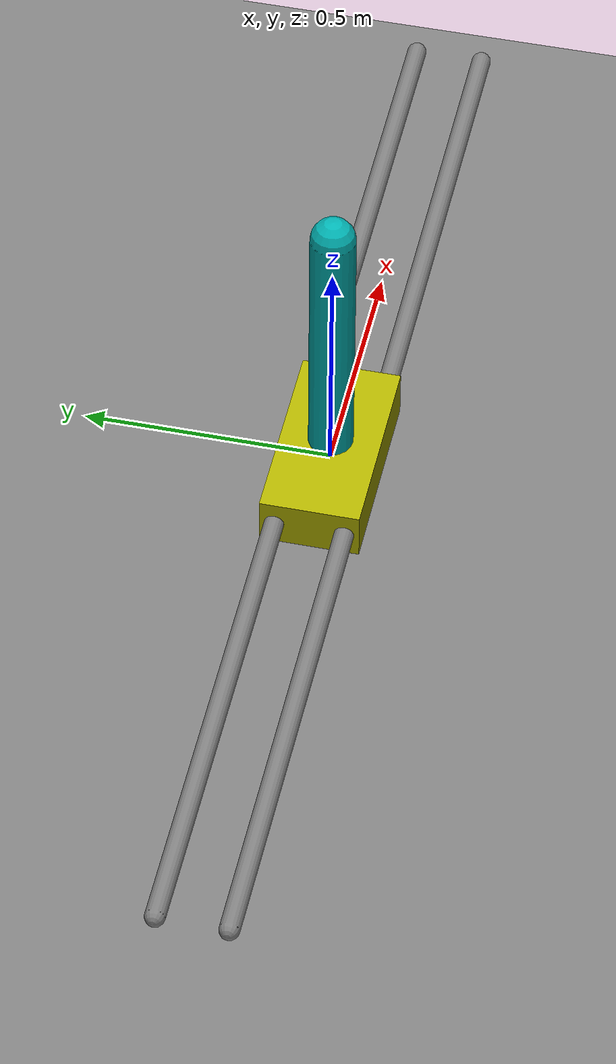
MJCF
<mujoco model='test_cartpole'>
  <compiler inertiafromgeom='true' coordinate='local'/>

  <custom>
    <!-- 设定一个控制步长为0.04s -->
    <numeric name="control_timestep" data="0.04" />
  </custom>
  <!-- 设定底层物理引擎的仿真步长为0.01s -->
  <option timestep='0.01'/>

  <default>
    <!-- 增加关节阻尼为0.05 -->
    <joint damping='0.05' solreflimit='.08 1'/>
    <!-- 定义了各种摩擦系数 -->
    <geom contype='0' friction='1 0.1 0.1'/>
  </default>

  <worldbody>
    <camera name='fixed' pos='0 -2.5 0' quat='0.707 0.707 0 0'/>
    <geom name='floor' pos='0 0 -1' size='4 4 4' type='plane' />
    <geom name='rail1' type='capsule' pos='0 .07 0' quat='0.707 0 0.707 0'
          size='0.02 1.2' />
    <geom name='rail2' type='capsule' pos='0 -.07 0' quat='0.707 0 0.707 0'
          size='0.02 1.2' />
    <!-- 小车物体定义 -->
    <body name='cart' pos='0 0 0'>
      <camera pos='0 -2.5 0' quat='0.707 0.707 0 0' />
      <!-- 下面的range限制了小车的移动范围在-1到1之间 -->
      <joint name='slider' type='slide' limited='true' pos='0 0 0'
               axis='1 0 0' range='-1 1' />
      <geom name='cart' type='box' pos='0 0 0'
              size='0.2 0.1 0.05' rgba='0.7 0.7 0 1' />
      <site name='cart sensor' type='box' pos='0 0 0'
              size='0.2 0.1 0.05' rgba='0.7 0.7 0 0' />
      <!-- 倒立摆物体定义 -->
      <body name='pole' pos='0 0 0'>
        <camera name='pole'  pos='0 -2.5 0' quat='0.707 0.707 0 0' />
        <joint name='hinge' type='hinge' pos='0 0 0' axis='0 1 0'/>
        <geom type='capsule' fromto='0 0 0 0 0 0.6'
                size='0.045 0.3' rgba='0 0.7 0.7 1' />
        <site type='sphere' size='.01' name='tip' pos='.001 0 .6'/>
      </body>
    </body>
  </worldbody>

  <!-- 定义输出，输出放大系数为50,输出范围为-1到1 -->
  <actuator>
    <motor name='slide' joint='slider' gear='50' ctrllimited='true' ctrlrange='-1 1' />
  </actuator>

  <!-- 设定加速度传感器，用来获取小车的加速度 -->
  <sensor>
    <accelerometer name="accelerometer" site="cart sensor"/>
    <touch name="collision" site="cart sensor"/>
  </sensor>

</mujoco>
